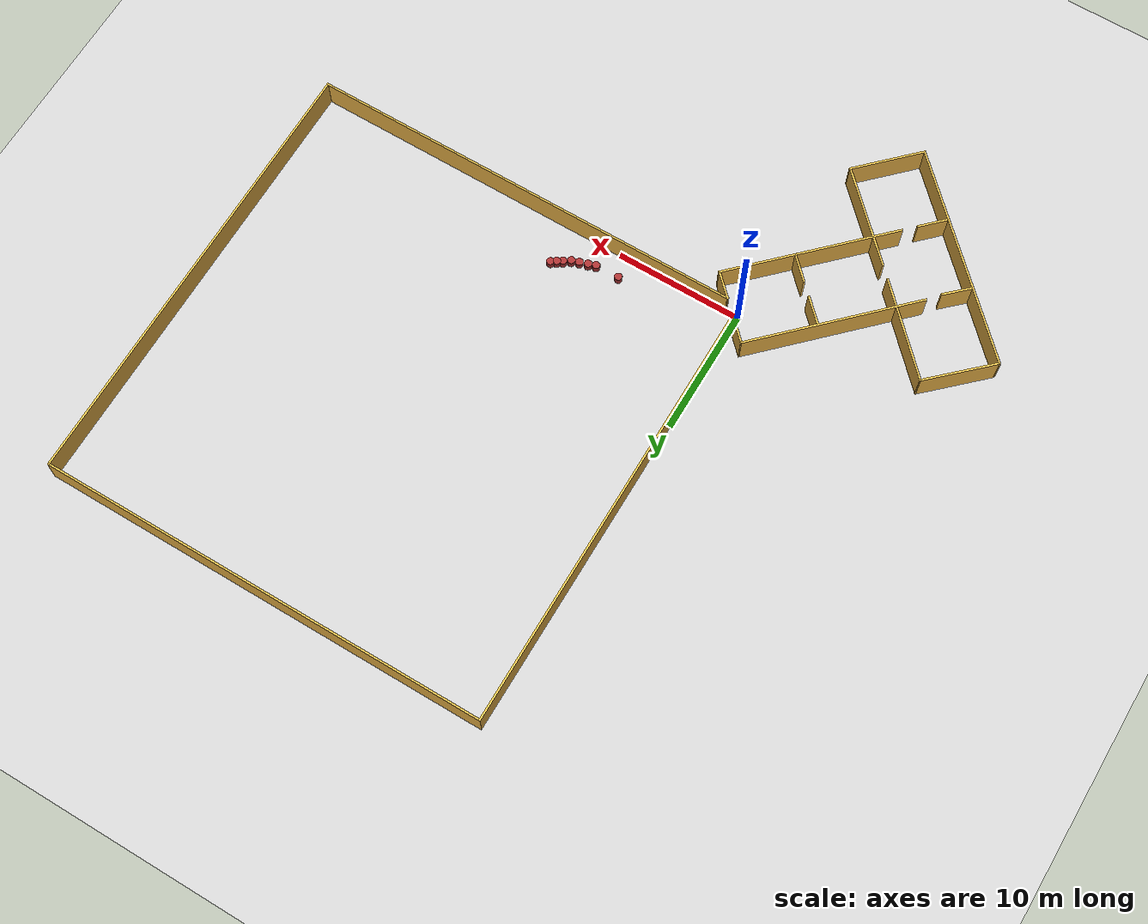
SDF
<sdf version="1.6">
 <world name="default">
  <model name="ground_plane">
   <static>1</static>
   <link name="link">
    <collision name="collision">
     <geometry><plane><normal>0 0 1</normal><size>100 100</size></plane></geometry>
     <surface><friction><ode><mu>100</mu><mu2>50</mu2></ode></friction></surface>
    </collision>
    <visual name="visual">
     <cast_shadows>0</cast_shadows>
     <geometry><plane><normal>0 0 1</normal><size>100 100</size></plane></geometry>
     <material>
      <script><uri>file://media/materials/scripts/gazebo.material</uri><name>Gazebo/Grey</name></script>
     </material>
    </visual>
   </link>
  </model>
  <model name="unit_cylinder_25">
   <static>1</static>
   <pose>12.3104 2.2071 0 0 -0 0</pose>
   <link name="link">
    <inertial>
     <mass>1</mass>
     <inertia><ixx>0.145833</ixx><ixy>0</ixy><ixz>0</ixz><iyy>0.145833</iyy><iyz>0</iyz><izz>0.125</izz></inertia>
    </inertial>
    <collision name="collision">
     <geometry><cylinder><radius>0.3</radius><length>1</length></cylinder></geometry>
    </collision>
    <visual name="visual">
     <geometry><cylinder><radius>0.3</radius><length>1</length></cylinder></geometry>
     <material><ambient>0.648 0.192 0.192 1</ambient><diffuse>0.648 0.192 0.192 1</diffuse></material>
     <material>
      <script><name>Gazebo/Grey</name><uri>file://media/materials/scripts/gazebo.material</uri></script>
     </material>
    </visual>
   </link>
  </model>
  <model name="unit_cylinder_35">
   <static>1</static>
   <pose>9.18583 1.77587 0 0 -0 0</pose>
   <link name="link">
    <inertial>
     <mass>1</mass>
     <inertia><ixx>0.145833</ixx><ixy>0</ixy><ixz>0</ixz><iyy>0.145833</iyy><iyz>0</iyz><izz>0.125</izz></inertia>
    </inertial>
    <collision name="collision">
     <geometry><cylinder><radius>0.3</radius><length>1</length></cylinder></geometry>
    </collision>
    <visual name="visual">
     <geometry><cylinder><radius>0.3</radius><length>1</length></cylinder></geometry>
     <material><ambient>0.648 0.192 0.192 1</ambient><diffuse>0.648 0.192 0.192 1</diffuse></material>
     <material>
      <script><name>Gazebo/Grey</name><uri>file://media/materials/scripts/gazebo.material</uri></script>
     </material>
    </visual>
   </link>
  </model>
  <model name="unit_cylinder_120">
   <static>1</static>
   <pose>11.1 1.8 0 0 -0 0</pose>
   <link name="link">
    <inertial>
     <mass>1</mass>
     <inertia><ixx>0.145833</ixx><ixy>0</ixy><ixz>0</ixz><iyy>0.145833</iyy><iyz>0</iyz><izz>0.125</izz></inertia>
    </inertial>
    <collision name="collision">
     <geometry><cylinder><radius>0.3</radius><length>1</length></cylinder></geometry>
    </collision>
    <visual name="visual">
     <geometry><cylinder><radius>0.3</radius><length>1</length></cylinder></geometry>
     <material><ambient>0.648 0.192 0.192 1</ambient><diffuse>0.648 0.192 0.192 1</diffuse></material>
     <material>
      <script><name>Gazebo/Grey</name><uri>file://media/materials/scripts/gazebo.material</uri></script>
     </material>
    </visual>
   </link>
  </model>
  <model name="unit_cylinder_121">
   <static>1</static>
   <pose>11.6782 2.00305 0 0 -0 0</pose>
   <link name="link">
    <inertial>
     <mass>1</mass>
     <inertia><ixx>0.145833</ixx><ixy>0</ixy><ixz>0</ixz><iyy>0.145833</iyy><iyz>0</iyz><izz>0.125</izz></inertia>
    </inertial>
    <collision name="collision">
     <geometry><cylinder><radius>0.3</radius><length>1</length></cylinder></geometry>
    </collision>
    <visual name="visual">
     <geometry><cylinder><radius>0.3</radius><length>1</length></cylinder></geometry>
     <material><ambient>0.648 0.192 0.192 1</ambient><diffuse>0.648 0.192 0.192 1</diffuse></material>
     <material>
      <script><name>Gazebo/Grey</name><uri>file://media/materials/scripts/gazebo.material</uri></script>
     </material>
    </visual>
   </link>
  </model>
  <model name="unit_cylinder_127">
   <static>1</static>
   <pose>12.9 2.4 0 0 -0 0</pose>
   <link name="link">
    <inertial>
     <mass>1</mass>
     <inertia><ixx>0.145833</ixx><ixy>0</ixy><ixz>0</ixz><iyy>0.145833</iyy><iyz>0</iyz><izz>0.125</izz></inertia>
    </inertial>
    <collision name="collision">
     <geometry><cylinder><radius>0.3</radius><length>1</length></cylinder></geometry>
    </collision>
    <visual name="visual">
     <geometry><cylinder><radius>0.3</radius><length>1</length></cylinder></geometry>
     <material><ambient>0.648 0.192 0.192 1</ambient><diffuse>0.648 0.192 0.192 1</diffuse></material>
     <material>
      <script><name>Gazebo/Grey</name><uri>file://media/materials/scripts/gazebo.material</uri></script>
     </material>
    </visual>
   </link>
  </model>
  <model name="unit_cylinder_148">
   <static>1</static>
   <pose>13.8007 3.01369 0 0 -0 0</pose>
   <link name="link">
    <inertial>
     <mass>1</mass>
     <inertia><ixx>0.145833</ixx><ixy>0</ixy><ixz>0</ixz><iyy>0.145833</iyy><iyz>0</iyz><izz>0.125</izz></inertia>
    </inertial>
    <collision name="collision">
     <geometry><cylinder><radius>0.3</radius><length>1</length></cylinder></geometry>
    </collision>
    <visual name="visual">
     <geometry><cylinder><radius>0.3</radius><length>1</length></cylinder></geometry>
     <material><ambient>0.648 0.192 0.192 1</ambient><diffuse>0.648 0.192 0.192 1</diffuse></material>
     <material>
      <script><name>Gazebo/Grey</name><uri>file://media/materials/scripts/gazebo.material</uri></script>
     </material>
    </visual>
   </link>
  </model>
  <model name="unit_cylinder_149">
   <static>1</static>
   <pose>13.395 2.75399 0 0 -0 0</pose>
   <link name="link">
    <inertial>
     <mass>1</mass>
     <inertia><ixx>0.145833</ixx><ixy>0</ixy><ixz>0</ixz><iyy>0.145833</iyy><iyz>0</iyz><izz>0.125</izz></inertia>
    </inertial>
    <collision name="collision">
     <geometry><cylinder><radius>0.3</radius><length>1</length></cylinder></geometry>
    </collision>
    <visual name="visual">
     <geometry><cylinder><radius>0.3</radius><length>1</length></cylinder></geometry>
     <material><ambient>0.648 0.192 0.192 1</ambient><diffuse>0.648 0.192 0.192 1</diffuse></material>
     <material>
      <script><name>Gazebo/Grey</name><uri>file://media/materials/scripts/gazebo.material</uri></script>
     </material>
    </visual>
   </link>
  </model>
  <model name="unit_cylinder_156">
   <static>1</static>
   <pose>14.1973 3.26566 0 0 -0 0</pose>
   <link name="link">
    <inertial>
     <mass>1</mass>
     <inertia><ixx>0.145833</ixx><ixy>0</ixy><ixz>0</ixz><iyy>0.145833</iyy><iyz>0</iyz><izz>0.125</izz></inertia>
    </inertial>
    <collision name="collision">
     <geometry><cylinder><radius>0.3</radius><length>1</length></cylinder></geometry>
    </collision>
    <visual name="visual">
     <geometry><cylinder><radius>0.3</radius><length>1</length></cylinder></geometry>
     <material><ambient>0.648 0.192 0.192 1</ambient><diffuse>0.648 0.192 0.192 1</diffuse></material>
     <material>
      <script><name>Gazebo/Grey</name><uri>file://media/materials/scripts/gazebo.material</uri></script>
     </material>
    </visual>
   </link>
  </model>
  <model name="wallall">
   <pose>8.77294 8.88241 0 0 -0 0</pose>
   <link name="Wall_104">
    <collision name="Wall_104_Collision">
     <geometry><box><size>2.375 0.15 2.5</size></box></geometry>
     <pose>0 0 1.25 0 -0 0</pose>
    </collision>
    <visual name="Wall_104_Visual">
     <pose>0 0 1.25 0 -0 0</pose>
     <geometry><box><size>2.375 0.15 2.5</size></box></geometry>
     <material>
      <script><uri>file://media/materials/scripts/gazebo.material</uri><name>Gazebo/Grey</name></script>
      <ambient>1 0.764706 0.305882 1</ambient>
     </material>
     <meta><layer>0</layer></meta>
    </visual>
    <pose>-13.6356 -11.2446 0 0 -0 -0.785398</pose>
   </link>
   <link name="Wall_108">
    <collision name="Wall_108_Collision">
     <geometry><box><size>2.375 0.15 2.5</size></box></geometry>
     <pose>0 0 1.25 0 -0 0</pose>
    </collision>
    <visual name="Wall_108_Visual">
     <pose>0 0 1.25 0 -0 0</pose>
     <geometry><box><size>2.375 0.15 2.5</size></box></geometry>
     <material>
      <script><uri>file://media/materials/scripts/gazebo.material</uri><name>Gazebo/Grey</name></script>
      <ambient>1 0.764706 0.305882 1</ambient>
     </material>
     <meta><layer>0</layer></meta>
    </visual>
    <pose>-11.1241 -13.7528 0 0 -0 2.35619</pose>
   </link>
   <link name="Wall_114">
    <collision name="Wall_114_Collision">
     <geometry><box><size>6 0.15 2.5</size></box></geometry>
     <pose>0 0 1.25 0 -0 0</pose>
    </collision>
    <visual name="Wall_114_Visual">
     <pose>0 0 1.25 0 -0 0</pose>
     <geometry><box><size>6 0.15 2.5</size></box></geometry>
     <material>
      <script><uri>file://media/materials/scripts/gazebo.material</uri><name>Gazebo/Grey</name></script>
      <ambient>1 0.764706 0.305882 1</ambient>
     </material>
     <meta><layer>0</layer></meta>
    </visual>
    <pose>-12.5058 -25.0182 0 0 -0 -2.35619</pose>
   </link>
   <link name="Wall_116">
    <collision name="Wall_116_Collision">
     <geometry><box><size>18 0.15 2.5</size></box></geometry>
     <pose>0 0 1.25 0 -0 0</pose>
    </collision>
    <visual name="Wall_116_Visual">
     <pose>0 0 1.25 0 -0 0</pose>
     <geometry><box><size>18 0.15 2.5</size></box></geometry>
     <material>
      <script><uri>file://media/materials/scripts/gazebo.material</uri><name>Gazebo/Grey</name></script>
      <ambient>1 0.764706 0.305882 1</ambient>
     </material>
     <meta><layer>0</layer></meta>
    </visual>
    <pose>-20.8851 -20.7756 0 0 -0 2.35619</pose>
   </link>
   <link name="Wall_119">
    <collision name="Wall_119_Collision">
     <geometry><box><size>6.10783 0.15 2.5</size></box></geometry>
     <pose>0 0 1.25 0 -0 0</pose>
    </collision>
    <visual name="Wall_119_Visual">
     <pose>0 0 1.25 0 -0 0</pose>
     <geometry><box><size>6.10783 0.15 2.5</size></box></geometry>
     <material>
      <script><uri>file://media/materials/scripts/gazebo.material</uri><name>Gazebo/Grey</name></script>
      <ambient>1 0.764706 0.305882 1</ambient>
     </material>
     <meta><layer>0</layer></meta>
    </visual>
    <pose>-25.0417 -12.4072 0 0 -0 0.762416</pose>
   </link>
   <link name="Wall_128">
    <collision name="Wall_128_Collision">
     <geometry><box><size>2.34968 0.15 2.5</size></box></geometry>
     <pose>0 0 1.25 0 -0 0</pose>
    </collision>
    <visual name="Wall_128_Visual">
     <pose>0 0 1.25 0 -0 0</pose>
     <geometry><box><size>2.34968 0.15 2.5</size></box></geometry>
     <material>
      <script><uri>file://media/materials/scripts/gazebo.material</uri><name>Gazebo/Grey</name></script>
      <ambient>1 0.764706 0.305882 1</ambient>
     </material>
     <meta><layer>0</layer></meta>
    </visual>
    <pose>-21.9153 -17.9802 0 0 -0 0.754765</pose>
   </link>
   <link name="Wall_132">
    <collision name="Wall_132_Collision">
     <geometry><box><size>2.5 0.15 2.5</size></box></geometry>
     <pose>0 0 1.25 0 -0 0</pose>
    </collision>
    <visual name="Wall_132_Visual">
     <pose>0 0 1.25 0 -0 0</pose>
     <geometry><box><size>2.5 0.15 2.5</size></box></geometry>
     <material>
      <script><uri>file://media/materials/scripts/gazebo.material</uri><name>Gazebo/Grey</name></script>
      <ambient>1 0.764706 0.305882 1</ambient>
     </material>
     <meta><layer>0</layer></meta>
    </visual>
    <pose>-17.8846 -22.1053 0 0 -0 -2.35619</pose>
   </link>
   <link name="Wall_62">
    <collision name="Wall_62_Collision">
     <geometry><box><size>35.15 0.15 2.5</size></box></geometry>
     <pose>0 0 1.25 0 -0 0</pose>
    </collision>
    <visual name="Wall_62_Visual">
     <pose>0 0 1.25 0 -0 0</pose>
     <geometry><box><size>35.15 0.15 2.5</size></box></geometry>
     <material>
      <script><uri>file://media/materials/scripts/gazebo.material</uri><name>Gazebo/Grey</name></script>
      <ambient>1 0.764706 0.305882 1</ambient>
     </material>
     <meta><layer>0</layer></meta>
    </visual>
    <pose>9.72706 -8.88241 0 0 -0 0</pose>
   </link>
   <link name="Wall_64">
    <collision name="Wall_64_Collision">
     <geometry><box><size>35.15 0.15 2.5</size></box></geometry>
     <pose>0 0 1.25 0 -0 0</pose>
    </collision>
    <visual name="Wall_64_Visual">
     <pose>0 0 1.25 0 -0 0</pose>
     <geometry><box><size>35.15 0.15 2.5</size></box></geometry>
     <material>
      <script><uri>file://media/materials/scripts/gazebo.material</uri><name>Gazebo/Grey</name></script>
      <ambient>1 0.764706 0.305882 1</ambient>
     </material>
     <meta><layer>0</layer></meta>
    </visual>
    <pose>-8.77294 9.61759 0 0 -0 1.5708</pose>
   </link>
   <link name="Wall_66">
    <collision name="Wall_66_Collision">
     <geometry><box><size>36.15 0.15 2.5</size></box></geometry>
     <pose>0 0 1.25 0 -0 0</pose>
    </collision>
    <visual name="Wall_66_Visual">
     <pose>0 0 1.25 0 -0 0</pose>
     <geometry><box><size>36.15 0.15 2.5</size></box></geometry>
     <material>
      <script><uri>file://media/materials/scripts/gazebo.material</uri><name>Gazebo/Grey</name></script>
      <ambient>1 0.764706 0.305882 1</ambient>
     </material>
     <meta><layer>0</layer></meta>
    </visual>
    <pose>9.22706 27.1176 0 0 -0 0</pose>
   </link>
   <link name="Wall_68">
    <collision name="Wall_68_Collision">
     <geometry><box><size>36.15 0.15 2.5</size></box></geometry>
     <pose>0 0 1.25 0 -0 0</pose>
    </collision>
    <visual name="Wall_68_Visual">
     <pose>0 0 1.25 0 -0 0</pose>
     <geometry><box><size>36.15 0.15 2.5</size></box></geometry>
     <material>
      <script><uri>file://media/materials/scripts/gazebo.material</uri><name>Gazebo/Grey</name></script>
      <ambient>1 0.764706 0.305882 1</ambient>
     </material>
     <meta><layer>0</layer></meta>
    </visual>
    <pose>27.2271 9.11759 0 0 -0 1.5708</pose>
   </link>
   <link name="Wall_70">
    <collision name="Wall_70_Collision">
     <geometry><box><size>2.38991 0.15 2.5</size></box></geometry>
     <pose>0 0 1.25 0 -0 0</pose>
    </collision>
    <visual name="Wall_70_Visual">
     <pose>0 0 1.25 0 -0 0</pose>
     <geometry><box><size>2.38991 0.15 2.5</size></box></geometry>
     <material>
      <script><uri>file://media/materials/scripts/gazebo.material</uri><name>Gazebo/Grey</name></script>
      <ambient>1 0.764706 0.305882 1</ambient>
     </material>
     <meta><layer>0</layer></meta>
    </visual>
    <pose>-9.56683 -7.09244 0 0 -0 2.35867</pose>
   </link>
   <link name="Wall_72">
    <collision name="Wall_72_Collision">
     <geometry><box><size>2.35 0.15 2.5</size></box></geometry>
     <pose>0 0 1.25 0 -0 0</pose>
    </collision>
    <visual name="Wall_72_Visual">
     <pose>0 0 1.25 0 -0 0</pose>
     <geometry><box><size>2.35 0.15 2.5</size></box></geometry>
     <material>
      <script><uri>file://media/materials/scripts/gazebo.material</uri><name>Gazebo/Grey</name></script>
      <ambient>1 0.764706 0.305882 1</ambient>
     </material>
     <meta><layer>0</layer></meta>
    </visual>
    <pose>-6.99513 -9.66023 0 0 -0 -0.785398</pose>
   </link>
   <link name="Wall_75">
    <collision name="Wall_75_Collision">
     <geometry><box><size>14.175 0.15 2.5</size></box></geometry>
     <pose>0 0 1.25 0 -0 0</pose>
    </collision>
    <visual name="Wall_75_Visual">
     <pose>0 0 1.25 0 -0 0</pose>
     <geometry><box><size>14.175 0.15 2.5</size></box></geometry>
     <material>
      <script><uri>file://media/materials/scripts/gazebo.material</uri><name>Gazebo/Grey</name></script>
      <ambient>1 0.764706 0.305882 1</ambient>
     </material>
     <meta><layer>0</layer></meta>
    </visual>
    <pose>-15.3193 -11.2611 0 0 -0 -2.35619</pose>
   </link>
   <link name="Wall_77">
    <collision name="Wall_77_Collision">
     <geometry><box><size>14.175 0.15 2.5</size></box></geometry>
     <pose>0 0 1.25 0 -0 0</pose>
    </collision>
    <visual name="Wall_77_Visual">
     <pose>0 0 1.25 0 -0 0</pose>
     <geometry><box><size>14.175 0.15 2.5</size></box></geometry>
     <material>
      <script><uri>file://media/materials/scripts/gazebo.material</uri><name>Gazebo/Grey</name></script>
      <ambient>1 0.764706 0.305882 1</ambient>
     </material>
     <meta><layer>0</layer></meta>
    </visual>
    <pose>-11.1759 -15.3966 0 0 -0 -2.35619</pose>
   </link>
   <link name="Wall_91">
    <collision name="Wall_91_Collision">
     <geometry><box><size>8.375 0.15 2.5</size></box></geometry>
     <pose>0 0 1.25 0 -0 0</pose>
    </collision>
    <visual name="Wall_91_Visual">
     <pose>0 0 1.25 0 -0 0</pose>
     <geometry><box><size>8.375 0.15 2.5</size></box></geometry>
     <material>
      <script><uri>file://media/materials/scripts/gazebo.material</uri><name>Gazebo/Grey</name></script>
      <ambient>1 0.764706 0.305882 1</ambient>
     </material>
     <meta><layer>0</layer></meta>
    </visual>
    <pose>-20.0155 -13.2933 0 0 -0 -0.797701</pose>
   </link>
   <link name="Wall_99">
    <collision name="Wall_99_Collision">
     <geometry><box><size>8.375 0.15 2.5</size></box></geometry>
     <pose>0 0 1.25 0 -0 0</pose>
    </collision>
    <visual name="Wall_99_Visual">
     <pose>0 0 1.25 0 -0 0</pose>
     <geometry><box><size>8.375 0.15 2.5</size></box></geometry>
     <material>
      <script><uri>file://media/materials/scripts/gazebo.material</uri><name>Gazebo/Grey</name></script>
      <ambient>1 0.764706 0.305882 1</ambient>
     </material>
     <meta><layer>0</layer></meta>
    </visual>
    <pose>-13.3455 -20.042 0 0 -0 2.35619</pose>
   </link>
   <static>1</static>
  </model>
 </world>
</sdf>
